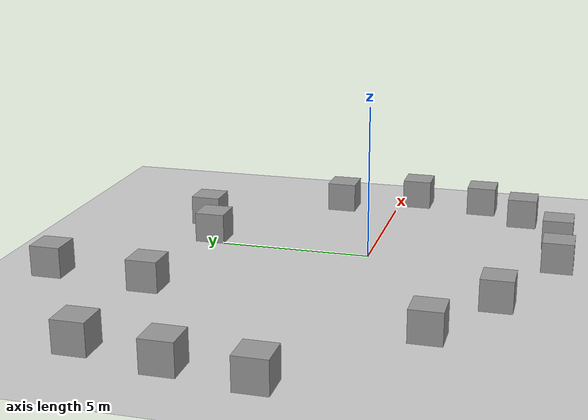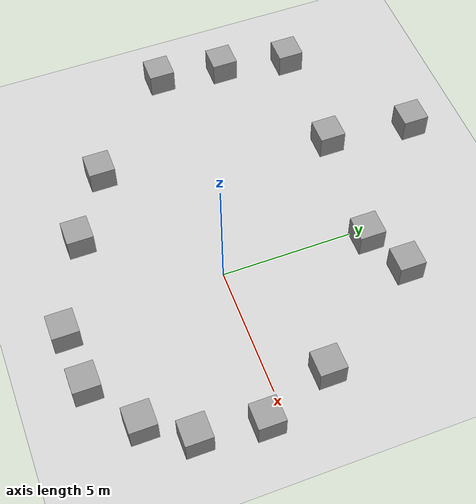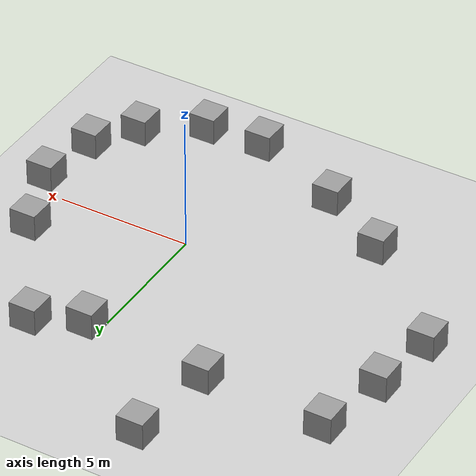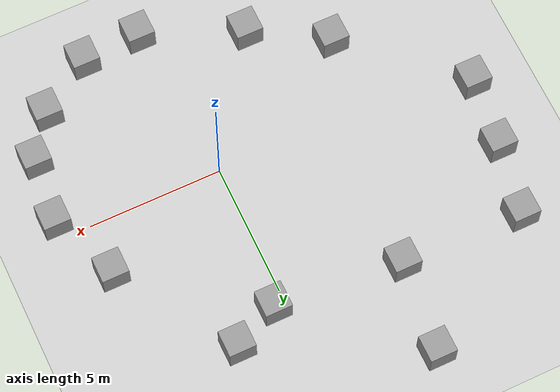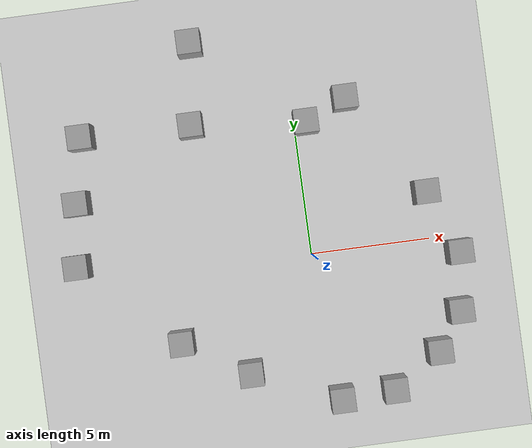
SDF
<sdf version="1.7">
 <world name="default">
  <light name="sun" type="directional">
   <pose>0 0 10 0 -0 0</pose>
   <diffuse>0.8 0.8 0.8 1</diffuse>
   <specular>0.2 0.2 0.2 1</specular>
   <attenuation>
    <range>1000</range>
    <constant>0.9</constant>
    <linear>0.01</linear>
    <quadratic>0.001</quadratic>
   </attenuation>
   <direction>-0.5 0.1 -0.9</direction>
   <spot><inner_angle>0</inner_angle><outer_angle>0</outer_angle><falloff>0</falloff></spot>
  </light>
  <model name="ground_plane">
   <static>1</static>
   <link name="link">
    <collision name="collision">
     <geometry><plane><normal>0 0 1</normal><size>100 100</size></plane></geometry>
     <surface>
      <contact><collide_bitmask>65535</collide_bitmask></contact>
      <friction><ode><mu>100</mu><mu2>50</mu2></ode></friction>
     </surface>
    </collision>
    <visual name="visual">
     <cast_shadows>0</cast_shadows>
     <geometry><plane><normal>0 0 1</normal><size>100 100</size></plane></geometry>
     <material>
      <script><uri>file://media/materials/scripts/gazebo.material</uri><name>Gazebo/Grey</name></script>
     </material>
    </visual>
   </link>
  </model>
  <gravity>0 0 -9.8</gravity>
  <magnetic_field>6e-06 2.3e-05 -4.2e-05</magnetic_field>
  <atmosphere type="adiabatic"/>
  <physics type="ode">
   <max_step_size>0.001</max_step_size>
   <real_time_factor>1</real_time_factor>
   <real_time_update_rate>1000</real_time_update_rate>
  </physics>
  <scene><ambient>0.4 0.4 0.4 1</ambient><background>0.7 0.7 0.7 1</background><shadows>1</shadows></scene>
  <spherical_coordinates>
   <surface_model>EARTH_WGS84</surface_model>
   <latitude_deg>0</latitude_deg>
   <longitude_deg>0</longitude_deg>
   <elevation>0</elevation>
   <heading_deg>0</heading_deg>
  </spherical_coordinates>
  <model name="unit_box">
   <pose>6.0712 -0.663707 0.499995 -1e-05 -0 -0</pose>
   <link name="link">
    <inertial>
     <mass>1</mass>
     <inertia>
      <ixx>0.166667</ixx>
      <ixy>0</ixy>
      <ixz>0</ixz>
      <iyy>0.166667</iyy>
      <iyz>0</iyz>
      <izz>0.166667</izz>
     </inertia>
    </inertial>
    <collision name="collision"><geometry><box><size>1 1 1</size></box></geometry></collision>
    <visual name="visual">
     <geometry><box><size>1 1 1</size></box></geometry>
     <material>
      <script><name>Gazebo/Grey</name><uri>file://media/materials/scripts/gazebo.material</uri></script>
     </material>
    </visual>
   </link>
  </model>
  <model name="unit_box_0">
   <pose>5.01781 1.96604 0.499995 0 1e-05 0</pose>
   <link name="link">
    <inertial>
     <mass>1</mass>
     <inertia>
      <ixx>0.166667</ixx>
      <ixy>0</ixy>
      <ixz>0</ixz>
      <iyy>0.166667</iyy>
      <iyz>0</iyz>
      <izz>0.166667</izz>
     </inertia>
    </inertial>
    <collision name="collision"><geometry><box><size>1 1 1</size></box></geometry></collision>
    <visual name="visual">
     <geometry><box><size>1 1 1</size></box></geometry>
     <material>
      <script><name>Gazebo/Grey</name><uri>file://media/materials/scripts/gazebo.material</uri></script>
     </material>
    </visual>
   </link>
  </model>
  <model name="unit_box_1">
   <pose>2.19069 6.26717 0.499995 -1e-05 -0 -0</pose>
   <link name="link">
    <inertial>
     <mass>1</mass>
     <inertia>
      <ixx>0.166667</ixx>
      <ixy>0</ixy>
      <ixz>0</ixz>
      <iyy>0.166667</iyy>
      <iyz>0</iyz>
      <izz>0.166667</izz>
     </inertia>
    </inertial>
    <collision name="collision"><geometry><box><size>1 1 1</size></box></geometry></collision>
    <visual name="visual">
     <geometry><box><size>1 1 1</size></box></geometry>
     <material>
      <script><name>Gazebo/Grey</name><uri>file://media/materials/scripts/gazebo.material</uri></script>
     </material>
    </visual>
   </link>
  </model>
  <model name="unit_box_2">
   <pose>0.465728 5.48991 0.499995 0 1e-05 0</pose>
   <link name="link">
    <inertial>
     <mass>1</mass>
     <inertia>
      <ixx>0.166667</ixx>
      <ixy>0</ixy>
      <ixz>0</ixz>
      <iyy>0.166667</iyy>
      <iyz>0</iyz>
      <izz>0.166667</izz>
     </inertia>
    </inertial>
    <collision name="collision"><geometry><box><size>1 1 1</size></box></geometry></collision>
    <visual name="visual">
     <geometry><box><size>1 1 1</size></box></geometry>
     <material>
      <script><name>Gazebo/Grey</name><uri>file://media/materials/scripts/gazebo.material</uri></script>
     </material>
    </visual>
   </link>
  </model>
  <model name="unit_box_3">
   <pose>-3.89878 9.3366 0.499995 -1e-05 -0 -0</pose>
   <link name="link">
    <inertial>
     <mass>1</mass>
     <inertia>
      <ixx>0.166667</ixx>
      <ixy>0</ixy>
      <ixz>0</ixz>
      <iyy>0.166667</iyy>
      <iyz>0</iyz>
      <izz>0.166667</izz>
     </inertia>
    </inertial>
    <collision name="collision"><geometry><box><size>1 1 1</size></box></geometry></collision>
    <visual name="visual">
     <geometry><box><size>1 1 1</size></box></geometry>
     <material>
      <script><name>Gazebo/Grey</name><uri>file://media/materials/scripts/gazebo.material</uri></script>
     </material>
    </visual>
   </link>
  </model>
  <model name="unit_box_4">
   <pose>-4.27625 5.94534 0.499995 0 1e-05 0</pose>
   <link name="link">
    <inertial>
     <mass>1</mass>
     <inertia>
      <ixx>0.166667</ixx>
      <ixy>0</ixy>
      <ixz>0</ixz>
      <iyy>0.166667</iyy>
      <iyz>0</iyz>
      <izz>0.166667</izz>
     </inertia>
    </inertial>
    <collision name="collision"><geometry><box><size>1 1 1</size></box></geometry></collision>
    <visual name="visual">
     <geometry><box><size>1 1 1</size></box></geometry>
     <material>
      <script><name>Gazebo/Grey</name><uri>file://media/materials/scripts/gazebo.material</uri></script>
     </material>
    </visual>
   </link>
  </model>
  <model name="unit_box_5">
   <pose>-8.8607 6.04066 0.499995 -1e-05 -0 -0</pose>
   <link name="link">
    <inertial>
     <mass>1</mass>
     <inertia>
      <ixx>0.166667</ixx>
      <ixy>0</ixy>
      <ixz>0</ixz>
      <iyy>0.166667</iyy>
      <iyz>0</iyz>
      <izz>0.166667</izz>
     </inertia>
    </inertial>
    <collision name="collision"><geometry><box><size>1 1 1</size></box></geometry></collision>
    <visual name="visual">
     <geometry><box><size>1 1 1</size></box></geometry>
     <material>
      <script><name>Gazebo/Grey</name><uri>file://media/materials/scripts/gazebo.material</uri></script>
     </material>
    </visual>
   </link>
  </model>
  <model name="unit_box_6">
   <pose>-9.37368 3.34032 0.499995 0 1e-05 0</pose>
   <link name="link">
    <inertial>
     <mass>1</mass>
     <inertia>
      <ixx>0.166667</ixx>
      <ixy>0</ixy>
      <ixz>0</ixz>
      <iyy>0.166667</iyy>
      <iyz>0</iyz>
      <izz>0.166667</izz>
     </inertia>
    </inertial>
    <collision name="collision"><geometry><box><size>1 1 1</size></box></geometry></collision>
    <visual name="visual">
     <geometry><box><size>1 1 1</size></box></geometry>
     <material>
      <script><name>Gazebo/Grey</name><uri>file://media/materials/scripts/gazebo.material</uri></script>
     </material>
    </visual>
   </link>
  </model>
  <model name="unit_box_7">
   <pose>-9.69798 0.744556 0.499995 -1e-05 -0 -0</pose>
   <link name="link">
    <inertial>
     <mass>1</mass>
     <inertia>
      <ixx>0.166667</ixx>
      <ixy>0</ixy>
      <ixz>0</ixz>
      <iyy>0.166667</iyy>
      <iyz>0</iyz>
      <izz>0.166667</izz>
     </inertia>
    </inertial>
    <collision name="collision"><geometry><box><size>1 1 1</size></box></geometry></collision>
    <visual name="visual">
     <geometry><box><size>1 1 1</size></box></geometry>
     <material>
      <script><name>Gazebo/Grey</name><uri>file://media/materials/scripts/gazebo.material</uri></script>
     </material>
    </visual>
   </link>
  </model>
  <model name="unit_box_8">
   <pose>-5.80093 -2.92697 0.499995 0 1e-05 0</pose>
   <link name="link">
    <inertial>
     <mass>1</mass>
     <inertia>
      <ixx>0.166667</ixx>
      <ixy>0</ixy>
      <ixz>0</ixz>
      <iyy>0.166667</iyy>
      <iyz>0</iyz>
      <izz>0.166667</izz>
     </inertia>
    </inertial>
    <collision name="collision"><geometry><box><size>1 1 1</size></box></geometry></collision>
    <visual name="visual">
     <geometry><box><size>1 1 1</size></box></geometry>
     <material>
      <script><name>Gazebo/Grey</name><uri>file://media/materials/scripts/gazebo.material</uri></script>
     </material>
    </visual>
   </link>
  </model>
  <model name="unit_box_9">
   <pose>-3.1187 -4.54589 0.499995 -1e-05 -0 -0</pose>
   <link name="link">
    <inertial>
     <mass>1</mass>
     <inertia>
      <ixx>0.166667</ixx>
      <ixy>0</ixy>
      <ixz>0</ixz>
      <iyy>0.166667</iyy>
      <iyz>0</iyz>
      <izz>0.166667</izz>
     </inertia>
    </inertial>
    <collision name="collision"><geometry><box><size>1 1 1</size></box></geometry></collision>
    <visual name="visual">
     <geometry><box><size>1 1 1</size></box></geometry>
     <material>
      <script><name>Gazebo/Grey</name><uri>file://media/materials/scripts/gazebo.material</uri></script>
     </material>
    </visual>
   </link>
  </model>
  <model name="unit_box_10">
   <pose>0.478694 -6.0781 0.499995 0 1e-05 0</pose>
   <link name="link">
    <inertial>
     <mass>1</mass>
     <inertia>
      <ixx>0.166667</ixx>
      <ixy>0</ixy>
      <ixz>0</ixz>
      <iyy>0.166667</iyy>
      <iyz>0</iyz>
      <izz>0.166667</izz>
     </inertia>
    </inertial>
    <collision name="collision"><geometry><box><size>1 1 1</size></box></geometry></collision>
    <visual name="visual">
     <geometry><box><size>1 1 1</size></box></geometry>
     <material>
      <script><name>Gazebo/Grey</name><uri>file://media/materials/scripts/gazebo.material</uri></script>
     </material>
    </visual>
   </link>
  </model>
  <model name="unit_box_11">
   <pose>2.68527 -5.96328 0.499995 -1e-05 -0 -0</pose>
   <link name="link">
    <inertial>
     <mass>1</mass>
     <inertia>
      <ixx>0.166667</ixx>
      <ixy>0</ixy>
      <ixz>0</ixz>
      <iyy>0.166667</iyy>
      <iyz>0</iyz>
      <izz>0.166667</izz>
     </inertia>
    </inertial>
    <collision name="collision"><geometry><box><size>1 1 1</size></box></geometry></collision>
    <visual name="visual">
     <geometry><box><size>1 1 1</size></box></geometry>
     <material>
      <script><name>Gazebo/Grey</name><uri>file://media/materials/scripts/gazebo.material</uri></script>
     </material>
    </visual>
   </link>
  </model>
  <model name="unit_box_12">
   <pose>4.70407 -4.63554 0.499995 0 1e-05 0</pose>
   <link name="link">
    <inertial>
     <mass>1</mass>
     <inertia>
      <ixx>0.166667</ixx>
      <ixy>0</ixy>
      <ixz>0</ixz>
      <iyy>0.166667</iyy>
      <iyz>0</iyz>
      <izz>0.166667</izz>
     </inertia>
    </inertial>
    <collision name="collision"><geometry><box><size>1 1 1</size></box></geometry></collision>
    <visual name="visual">
     <geometry><box><size>1 1 1</size></box></geometry>
     <material>
      <script><name>Gazebo/Grey</name><uri>file://media/materials/scripts/gazebo.material</uri></script>
     </material>
    </visual>
   </link>
  </model>
  <model name="unit_box_13">
   <pose>5.77769 -3.07917 0.499995 -1e-05 -0 0</pose>
   <link name="link">
    <inertial>
     <mass>1</mass>
     <inertia>
      <ixx>0.166667</ixx>
      <ixy>0</ixy>
      <ixz>0</ixz>
      <iyy>0.166667</iyy>
      <iyz>0</iyz>
      <izz>0.166667</izz>
     </inertia>
    </inertial>
    <collision name="collision"><geometry><box><size>1 1 1</size></box></geometry></collision>
    <visual name="visual">
     <geometry><box><size>1 1 1</size></box></geometry>
     <material>
      <script><name>Gazebo/Grey</name><uri>file://media/materials/scripts/gazebo.material</uri></script>
     </material>
    </visual>
   </link>
  </model>
 </world>
</sdf>
